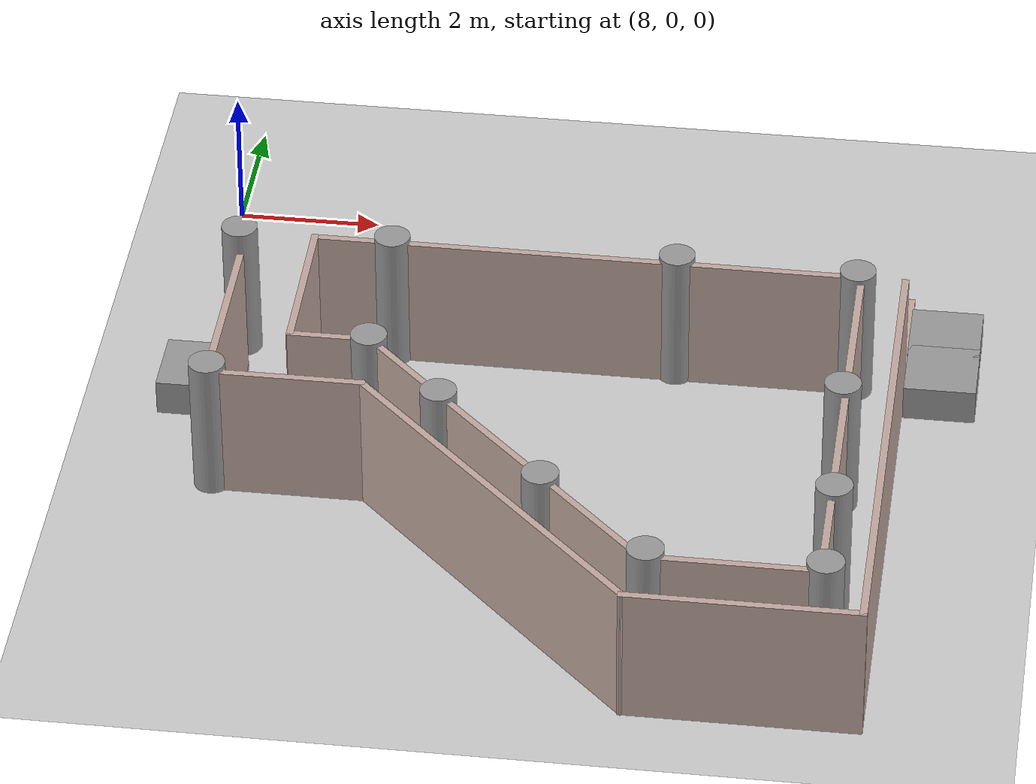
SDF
<sdf version="1.6">
 <world name="default">
  <model name="ground_plane">
   <static>1</static>
   <link name="link">
    <collision name="collision">
     <geometry><plane><normal>0 0 1</normal><size>100 100</size></plane></geometry>
     <surface>
      <contact><collide_bitmask>65535</collide_bitmask></contact>
      <friction><ode><mu>100</mu><mu2>50</mu2></ode></friction>
     </surface>
    </collision>
    <visual name="visual">
     <cast_shadows>0</cast_shadows>
     <geometry><plane><normal>0 0 1</normal><size>100 100</size></plane></geometry>
     <material>
      <script><uri>file://media/materials/scripts/gazebo.material</uri><name>Gazebo/Grey</name></script>
     </material>
    </visual>
   </link>
  </model>
  <model name="gedung_p">
   <pose>2.96636 -2.09069 0 0 -0 0</pose>
   <link name="Wall_176">
    <collision name="Wall_176_Collision">
     <geometry><box><size>2.2 0.1 0.1</size></box></geometry>
     <pose>0 0 0.05 0 -0 0</pose>
    </collision>
    <visual name="Wall_176_Visual">
     <pose>0 0 0.05 0 -0 0</pose>
     <geometry><box><size>2.2 0.1 0.1</size></box></geometry>
     <material>
      <script><uri>file://media/materials/scripts/gazebo.material</uri><name>Gazebo/Grey</name></script>
      <ambient>0.760784 0.662745 0.627451 1</ambient>
     </material>
     <meta><layer>0</layer></meta>
    </visual>
    <pose>14.8495 0.015805 0 0 -0 -1.5708</pose>
   </link>
   <link name="Wall_178">
    <collision name="Wall_178_Collision">
     <geometry><box><size>7.2 0.1 2</size></box></geometry>
     <pose>0 0 1 0 -0 0</pose>
    </collision>
    <visual name="Wall_178_Visual">
     <pose>0 0 1 0 -0 0</pose>
     <geometry><box><size>7.2 0.1 2</size></box></geometry>
     <material>
      <script><uri>file://media/materials/scripts/gazebo.material</uri><name>Gazebo/Grey</name></script>
      <ambient>0.760784 0.662745 0.627451 1</ambient>
     </material>
     <meta><layer>0</layer></meta>
    </visual>
    <pose>14.8495 -4.5842 0 0 -0 -1.5708</pose>
   </link>
   <link name="Wall_180">
    <collision name="Wall_180_Collision">
     <geometry><box><size>3.2 0.1 2</size></box></geometry>
     <pose>0 0 1 0 -0 0</pose>
    </collision>
    <visual name="Wall_180_Visual">
     <pose>0 0 1 0 -0 0</pose>
     <geometry><box><size>3.2 0.1 2</size></box></geometry>
     <material>
      <script><uri>file://media/materials/scripts/gazebo.material</uri><name>Gazebo/Grey</name></script>
      <ambient>0.760784 0.662745 0.627451 1</ambient>
     </material>
     <meta><layer>0</layer></meta>
    </visual>
    <pose>13.2995 -8.1342 0 0 -0 3.14159</pose>
   </link>
   <link name="Wall_181">
    <collision name="Wall_181_Collision">
     <geometry><box><size>5.7 0.1 2</size></box></geometry>
     <pose>0 0 1 0 -0 0</pose>
    </collision>
    <visual name="Wall_181_Visual">
     <pose>0 0 1 0 -0 0</pose>
     <geometry><box><size>5.7 0.1 2</size></box></geometry>
     <material>
      <script><uri>file://media/materials/scripts/gazebo.material</uri><name>Gazebo/Grey</name></script>
      <ambient>0.760784 0.662745 0.627451 1</ambient>
     </material>
     <meta><layer>0</layer></meta>
    </visual>
    <pose>9.76949 -6.15419 0 0 -0 2.35619</pose>
   </link>
   <link name="Wall_182">
    <collision name="Wall_182_Collision">
     <geometry><box><size>2.2 0.1 2</size></box></geometry>
     <pose>0 0 1 0 -0 0</pose>
    </collision>
    <visual name="Wall_182_Visual">
     <pose>0 0 1 0 -0 0</pose>
     <geometry><box><size>2.2 0.1 2</size></box></geometry>
     <material>
      <script><uri>file://media/materials/scripts/gazebo.material</uri><name>Gazebo/Grey</name></script>
      <ambient>0.760784 0.662745 0.627451 1</ambient>
     </material>
     <meta><layer>0</layer></meta>
    </visual>
    <pose>6.73949 -4.1742 0 0 -0 3.14159</pose>
   </link>
   <link name="Wall_189">
    <collision name="Wall_189_Collision">
     <geometry><box><size>2.7 0.1 2</size></box></geometry>
     <pose>0 0 1 0 -0 0</pose>
    </collision>
    <visual name="Wall_189_Visual">
     <pose>0 0 1 0 -0 0</pose>
     <geometry><box><size>2.7 0.1 2</size></box></geometry>
     <material>
      <script><uri>file://media/materials/scripts/gazebo.material</uri><name>Gazebo/Grey</name></script>
      <ambient>0.760784 0.662745 0.627451 1</ambient>
     </material>
     <meta><layer>0</layer></meta>
    </visual>
    <pose>5.68949 -2.87419 0 0 -0 1.5708</pose>
   </link>
   <link name="Wall_190">
    <collision name="Wall_190_Collision">
     <geometry><box><size>1.189 0.1 0.1</size></box></geometry>
     <pose>0 0 0.05 0 -0 0</pose>
    </collision>
    <visual name="Wall_190_Visual">
     <pose>0 0 0.05 0 -0 0</pose>
     <geometry><box><size>1.189 0.1 0.1</size></box></geometry>
     <material>
      <script><uri>file://media/materials/scripts/gazebo.material</uri><name>Gazebo/Grey</name></script>
      <ambient>0.760784 0.662745 0.627451 1</ambient>
     </material>
     <meta><layer>0</layer></meta>
    </visual>
    <pose>5.14499 -1.5742 0 0 -0 3.14159</pose>
   </link>
   <link name="Wall_205">
    <collision name="Wall_205_Collision">
     <geometry><box><size>7.7003 0.1 2</size></box></geometry>
     <pose>0 0 1 0 -0 0</pose>
    </collision>
    <visual name="Wall_205_Visual">
     <pose>0 0 1 0 -0 0</pose>
     <geometry><box><size>7.7003 0.1 2</size></box></geometry>
     <material>
      <script><uri>file://media/materials/scripts/gazebo.material</uri><name>Gazebo/Grey</name></script>
      <ambient>0.760784 0.662745 0.627451 1</ambient>
     </material>
     <meta><layer>0</layer></meta>
    </visual>
    <pose>10.4455 -0.995195 0 0 -0 -0.002895</pose>
   </link>
   <link name="Wall_206">
    <collision name="Wall_206_Collision">
     <geometry><box><size>6.43908 0.1 2</size></box></geometry>
     <pose>0 0 1 0 -0 0</pose>
    </collision>
    <visual name="Wall_206_Visual">
     <pose>0 0 1 0 -0 0</pose>
     <geometry><box><size>6.43908 0.1 2</size></box></geometry>
     <material>
      <script><uri>file://media/materials/scripts/gazebo.material</uri><name>Gazebo/Grey</name></script>
      <ambient>0.760784 0.662745 0.627451 1</ambient>
     </material>
     <meta><layer>0</layer></meta>
    </visual>
    <pose>14.2455 -4.1757 0 0 -0 -1.5708</pose>
   </link>
   <link name="Wall_209">
    <collision name="Wall_209_Collision">
     <geometry><box><size>2.44973 0.1 2</size></box></geometry>
     <pose>0 0 1 0 -0 0</pose>
    </collision>
    <visual name="Wall_209_Visual">
     <pose>0 0 1 0 -0 0</pose>
     <geometry><box><size>2.44973 0.1 2</size></box></geometry>
     <material>
      <script><uri>file://media/materials/scripts/gazebo.material</uri><name>Gazebo/Grey</name></script>
      <ambient>0.760784 0.662745 0.627451 1</ambient>
     </material>
     <meta><layer>0</layer></meta>
    </visual>
    <pose>13.0705 -7.3452 0 0 -0 3.14159</pose>
   </link>
   <link name="Wall_210">
    <collision name="Wall_210_Collision">
     <geometry><box><size>5.94975 0.1 2</size></box></geometry>
     <pose>0 0 1 0 -0 0</pose>
    </collision>
    <visual name="Wall_210_Visual">
     <pose>0 0 1 0 -0 0</pose>
     <geometry><box><size>5.94975 0.1 2</size></box></geometry>
     <material>
      <script><uri>file://media/materials/scripts/gazebo.material</uri><name>Gazebo/Grey</name></script>
      <ambient>0.760784 0.662745 0.627451 1</ambient>
     </material>
     <meta><layer>0</layer></meta>
    </visual>
    <pose>9.82749 -5.27719 0 0 -0 2.35619</pose>
   </link>
   <link name="Wall_211">
    <collision name="Wall_211_Collision">
     <geometry><box><size>1.2 0.1 2</size></box></geometry>
     <pose>0 0 1 0 -0 0</pose>
    </collision>
    <visual name="Wall_211_Visual">
     <pose>0 0 1 0 -0 0</pose>
     <geometry><box><size>1.2 0.1 2</size></box></geometry>
     <material>
      <script><uri>file://media/materials/scripts/gazebo.material</uri><name>Gazebo/Grey</name></script>
      <ambient>0.760784 0.662745 0.627451 1</ambient>
     </material>
     <meta><layer>0</layer></meta>
    </visual>
    <pose>7.20949 -3.20919 0 0 -0 3.14159</pose>
   </link>
   <link name="Wall_214">
    <collision name="Wall_214_Collision">
     <geometry><box><size>2.32454 0.1 2</size></box></geometry>
     <pose>0 0 1 0 -0 0</pose>
    </collision>
    <visual name="Wall_214_Visual">
     <pose>0 0 1 0 -0 0</pose>
     <geometry><box><size>2.32454 0.1 2</size></box></geometry>
     <material>
      <script><uri>file://media/materials/scripts/gazebo.material</uri><name>Gazebo/Grey</name></script>
      <ambient>0.760784 0.662745 0.627451 1</ambient>
     </material>
     <meta><layer>0</layer></meta>
    </visual>
    <pose>6.65249 -2.09669 0 0 -0 -1.5645</pose>
   </link>
   <link name="Wall_246">
    <collision name="Wall_246_Collision">
     <geometry><box><size>0.309496 0.2 2</size></box></geometry>
     <pose>0 0 1 0 -0 0</pose>
    </collision>
    <visual name="Wall_246_Visual">
     <pose>0 0 1 0 -0 0</pose>
     <geometry><box><size>0.309496 0.2 2</size></box></geometry>
     <material>
      <script><uri>file://media/materials/scripts/gazebo.material</uri><name>Gazebo/Grey</name></script>
      <ambient>0.760784 0.662745 0.627451 1</ambient>
     </material>
     <meta><layer>0</layer></meta>
    </visual>
    <pose>5.59996 -1.01699 0 0 -0 -0.049958</pose>
   </link>
   <static>1</static>
  </model>
  <model name="tiang_besar_46">
   <link name="link_0">
    <inertial>
     <mass>1</mass>
     <inertia>
      <ixx>0.166667</ixx>
      <ixy>0</ixy>
      <ixz>0</ixz>
      <iyy>0.166667</iyy>
      <iyz>0</iyz>
      <izz>0.166667</izz>
     </inertia>
    </inertial>
    <pose>0.080543 -0.031124 0 0 -0 0</pose>
    <visual name="visual">
     <geometry>
      <mesh><uri>/home/thardi/Gazebo Objek/cylinder sedang.dae</uri><scale>1 1 1.15</scale></mesh>
     </geometry>
     <material>
      <lighting>1</lighting>
      <script><uri>file://media/materials/scripts/gazebo.material</uri><name>Gazebo/Grey</name></script>
      <shader type="vertex"><normal_map>__default__</normal_map></shader>
      <ambient>0.3 0.3 0.3 1</ambient>
      <diffuse>0.7 0.7 0.7 1</diffuse>
      <specular>0.01 0.01 0.01 1</specular>
      <emissive>0 0 0 1</emissive>
     </material>
    </visual>
    <collision name="collision">
     <geometry>
      <mesh><uri>/home/thardi/Gazebo Objek/cylinder sedang.dae</uri><scale>1 1 1.15</scale></mesh>
     </geometry>
     <surface>
      <friction>
       <ode><mu>1.15</mu><mu2>1</mu2><fdir1>0 0 0</fdir1><slip1>0</slip1><slip2>0</slip2></ode>
       <torsional>
        <coefficient>1</coefficient>
        <patch_radius>0</patch_radius>
        <surface_radius>0</surface_radius>
        <use_patch_radius>1</use_patch_radius>
        <ode><slip>0</slip></ode>
       </torsional>
      </friction>
      <bounce><restitution_coefficient>0</restitution_coefficient><threshold>1e+06</threshold></bounce>
      <contact>
       <collide_without_contact>0</collide_without_contact>
       <collide_without_contact_bitmask>1</collide_without_contact_bitmask>
       <collide_bitmask>1</collide_bitmask>
       <ode>
        <soft_cfm>0</soft_cfm>
        <soft_erp>0.2</soft_erp>
        <kp>1e+13</kp>
        <kd>1</kd>
        <max_vel>0.01</max_vel>
        <min_depth>0</min_depth>
       </ode>
       <bullet>
        <split_impulse>1</split_impulse>
        <split_impulse_penetration_threshold>-0.01</split_impulse_penetration_threshold>
        <soft_cfm>0</soft_cfm>
        <soft_erp>0.2</soft_erp>
        <kp>1e+13</kp>
        <kd>1</kd>
       </bullet>
      </contact>
     </surface>
    </collision>
   </link>
   <static>1</static>
   <pose>8.4713 -3.02705 0 0 -0 0</pose>
  </model>
  <model name="tiang_besar_47">
   <link name="link_0">
    <inertial>
     <mass>1</mass>
     <inertia>
      <ixx>0.166667</ixx>
      <ixy>0</ixy>
      <ixz>0</ixz>
      <iyy>0.166667</iyy>
      <iyz>0</iyz>
      <izz>0.166667</izz>
     </inertia>
    </inertial>
    <pose>0.080543 -0.031124 0 0 -0 0</pose>
    <visual name="visual">
     <geometry>
      <mesh><uri>/home/thardi/Gazebo Objek/cylinder sedang.dae</uri><scale>1 1 1.15</scale></mesh>
     </geometry>
     <material>
      <lighting>1</lighting>
      <script><uri>file://media/materials/scripts/gazebo.material</uri><name>Gazebo/Grey</name></script>
      <shader type="vertex"><normal_map>__default__</normal_map></shader>
      <ambient>0.3 0.3 0.3 1</ambient>
      <diffuse>0.7 0.7 0.7 1</diffuse>
      <specular>0.01 0.01 0.01 1</specular>
      <emissive>0 0 0 1</emissive>
     </material>
    </visual>
    <collision name="collision">
     <geometry>
      <mesh><uri>/home/thardi/Gazebo Objek/cylinder sedang.dae</uri><scale>1 1 1.15</scale></mesh>
     </geometry>
     <surface>
      <friction>
       <ode><mu>1.15</mu><mu2>1</mu2><fdir1>0 0 0</fdir1><slip1>0</slip1><slip2>0</slip2></ode>
       <torsional>
        <coefficient>1</coefficient>
        <patch_radius>0</patch_radius>
        <surface_radius>0</surface_radius>
        <use_patch_radius>1</use_patch_radius>
        <ode><slip>0</slip></ode>
       </torsional>
      </friction>
      <bounce><restitution_coefficient>0</restitution_coefficient><threshold>1e+06</threshold></bounce>
      <contact>
       <collide_without_contact>0</collide_without_contact>
       <collide_without_contact_bitmask>1</collide_without_contact_bitmask>
       <collide_bitmask>1</collide_bitmask>
       <ode>
        <soft_cfm>0</soft_cfm>
        <soft_erp>0.2</soft_erp>
        <kp>1e+13</kp>
        <kd>1</kd>
        <max_vel>0.01</max_vel>
        <min_depth>0</min_depth>
       </ode>
       <bullet>
        <split_impulse>1</split_impulse>
        <split_impulse_penetration_threshold>-0.01</split_impulse_penetration_threshold>
        <soft_cfm>0</soft_cfm>
        <soft_erp>0.2</soft_erp>
        <kp>1e+13</kp>
        <kd>1</kd>
       </bullet>
      </contact>
     </surface>
    </collision>
   </link>
   <static>1</static>
   <pose>8.55382 -6.12721 0 0 -0 0</pose>
  </model>
  <model name="tiang_besar_48">
   <link name="link_0">
    <inertial>
     <mass>1</mass>
     <inertia>
      <ixx>0.166667</ixx>
      <ixy>0</ixy>
      <ixz>0</ixz>
      <iyy>0.166667</iyy>
      <iyz>0</iyz>
      <izz>0.166667</izz>
     </inertia>
    </inertial>
    <pose>0.080543 -0.031124 0 0 -0 0</pose>
    <visual name="visual">
     <geometry>
      <mesh><uri>/home/thardi/Gazebo Objek/cylinder sedang.dae</uri><scale>1 1 1.15</scale></mesh>
     </geometry>
     <material>
      <lighting>1</lighting>
      <script><uri>file://media/materials/scripts/gazebo.material</uri><name>Gazebo/Grey</name></script>
      <shader type="vertex"><normal_map>__default__</normal_map></shader>
      <ambient>0.3 0.3 0.3 1</ambient>
      <diffuse>0.7 0.7 0.7 1</diffuse>
      <specular>0.01 0.01 0.01 1</specular>
      <emissive>0 0 0 1</emissive>
     </material>
    </visual>
    <collision name="collision">
     <geometry>
      <mesh><uri>/home/thardi/Gazebo Objek/cylinder sedang.dae</uri><scale>1 1 1.15</scale></mesh>
     </geometry>
     <surface>
      <friction>
       <ode><mu>1.15</mu><mu2>1</mu2><fdir1>0 0 0</fdir1><slip1>0</slip1><slip2>0</slip2></ode>
       <torsional>
        <coefficient>1</coefficient>
        <patch_radius>0</patch_radius>
        <surface_radius>0</surface_radius>
        <use_patch_radius>1</use_patch_radius>
        <ode><slip>0</slip></ode>
       </torsional>
      </friction>
      <bounce><restitution_coefficient>0</restitution_coefficient><threshold>1e+06</threshold></bounce>
      <contact>
       <collide_without_contact>0</collide_without_contact>
       <collide_without_contact_bitmask>1</collide_without_contact_bitmask>
       <collide_bitmask>1</collide_bitmask>
       <ode>
        <soft_cfm>0</soft_cfm>
        <soft_erp>0.2</soft_erp>
        <kp>1e+13</kp>
        <kd>1</kd>
        <max_vel>0.01</max_vel>
        <min_depth>0</min_depth>
       </ode>
       <bullet>
        <split_impulse>1</split_impulse>
        <split_impulse_penetration_threshold>-0.01</split_impulse_penetration_threshold>
        <soft_cfm>0</soft_cfm>
        <soft_erp>0.2</soft_erp>
        <kp>1e+13</kp>
        <kd>1</kd>
       </bullet>
      </contact>
     </surface>
    </collision>
   </link>
   <static>1</static>
   <pose>10.6252 -5.25547 0 0 -0 0</pose>
  </model>
  <model name="tiang_besar_49">
   <link name="link_0">
    <inertial>
     <mass>1</mass>
     <inertia>
      <ixx>0.166667</ixx>
      <ixy>0</ixy>
      <ixz>0</ixz>
      <iyy>0.166667</iyy>
      <iyz>0</iyz>
      <izz>0.166667</izz>
     </inertia>
    </inertial>
    <pose>0.080543 -0.031124 0 0 -0 0</pose>
    <visual name="visual">
     <geometry>
      <mesh><uri>/home/thardi/Gazebo Objek/cylinder sedang.dae</uri><scale>1 1 1.15</scale></mesh>
     </geometry>
     <material>
      <lighting>1</lighting>
      <script><uri>file://media/materials/scripts/gazebo.material</uri><name>Gazebo/Grey</name></script>
      <shader type="vertex"><normal_map>__default__</normal_map></shader>
      <ambient>0.3 0.3 0.3 1</ambient>
      <diffuse>0.7 0.7 0.7 1</diffuse>
      <specular>0.01 0.01 0.01 1</specular>
      <emissive>0 0 0 1</emissive>
     </material>
    </visual>
    <collision name="collision">
     <geometry>
      <mesh><uri>/home/thardi/Gazebo Objek/cylinder sedang.dae</uri><scale>1 1 1.15</scale></mesh>
     </geometry>
     <surface>
      <friction>
       <ode><mu>1.15</mu><mu2>1</mu2><fdir1>0 0 0</fdir1><slip1>0</slip1><slip2>0</slip2></ode>
       <torsional>
        <coefficient>1</coefficient>
        <patch_radius>0</patch_radius>
        <surface_radius>0</surface_radius>
        <use_patch_radius>1</use_patch_radius>
        <ode><slip>0</slip></ode>
       </torsional>
      </friction>
      <bounce><restitution_coefficient>0</restitution_coefficient><threshold>1e+06</threshold></bounce>
      <contact>
       <collide_without_contact>0</collide_without_contact>
       <collide_without_contact_bitmask>1</collide_without_contact_bitmask>
       <collide_bitmask>1</collide_bitmask>
       <ode>
        <soft_cfm>0</soft_cfm>
        <soft_erp>0.2</soft_erp>
        <kp>1e+13</kp>
        <kd>1</kd>
        <max_vel>0.01</max_vel>
        <min_depth>0</min_depth>
       </ode>
       <bullet>
        <split_impulse>1</split_impulse>
        <split_impulse_penetration_threshold>-0.01</split_impulse_penetration_threshold>
        <soft_cfm>0</soft_cfm>
        <soft_erp>0.2</soft_erp>
        <kp>1e+13</kp>
        <kd>1</kd>
       </bullet>
      </contact>
     </surface>
    </collision>
   </link>
   <static>1</static>
   <pose>10.6094 -2.99968 0 0 -0 0</pose>
  </model>
  <model name="tiang_besar_50">
   <link name="link_0">
    <inertial>
     <mass>1</mass>
     <inertia>
      <ixx>0.166667</ixx>
      <ixy>0</ixy>
      <ixz>0</ixz>
      <iyy>0.166667</iyy>
      <iyz>0</iyz>
      <izz>0.166667</izz>
     </inertia>
    </inertial>
    <pose>0.080543 -0.031124 0 0 -0 0</pose>
    <visual name="visual">
     <geometry>
      <mesh><uri>/home/thardi/Gazebo Objek/cylinder sedang.dae</uri><scale>1 1 1.15</scale></mesh>
     </geometry>
     <material>
      <lighting>1</lighting>
      <script><uri>file://media/materials/scripts/gazebo.material</uri><name>Gazebo/Grey</name></script>
      <shader type="vertex"><normal_map>__default__</normal_map></shader>
      <ambient>0.3 0.3 0.3 1</ambient>
      <diffuse>0.7 0.7 0.7 1</diffuse>
      <specular>0.01 0.01 0.01 1</specular>
      <emissive>0 0 0 1</emissive>
     </material>
    </visual>
    <collision name="collision">
     <geometry>
      <mesh><uri>/home/thardi/Gazebo Objek/cylinder sedang.dae</uri><scale>1 1 1.15</scale></mesh>
     </geometry>
     <surface>
      <friction>
       <ode><mu>1.15</mu><mu2>1</mu2><fdir1>0 0 0</fdir1><slip1>0</slip1><slip2>0</slip2></ode>
       <torsional>
        <coefficient>1</coefficient>
        <patch_radius>0</patch_radius>
        <surface_radius>0</surface_radius>
        <use_patch_radius>1</use_patch_radius>
        <ode><slip>0</slip></ode>
       </torsional>
      </friction>
      <bounce><restitution_coefficient>0</restitution_coefficient><threshold>1e+06</threshold></bounce>
      <contact>
       <collide_without_contact>0</collide_without_contact>
       <collide_without_contact_bitmask>1</collide_without_contact_bitmask>
       <collide_bitmask>1</collide_bitmask>
       <ode>
        <soft_cfm>0</soft_cfm>
        <soft_erp>0.2</soft_erp>
        <kp>1e+13</kp>
        <kd>1</kd>
        <max_vel>0.01</max_vel>
        <min_depth>0</min_depth>
       </ode>
       <bullet>
        <split_impulse>1</split_impulse>
        <split_impulse_penetration_threshold>-0.01</split_impulse_penetration_threshold>
        <soft_cfm>0</soft_cfm>
        <soft_erp>0.2</soft_erp>
        <kp>1e+13</kp>
        <kd>1</kd>
       </bullet>
      </contact>
     </surface>
    </collision>
   </link>
   <static>1</static>
   <pose>14.8465 -9.32045 0 0 -0 0</pose>
  </model>
  <model name="tiang_besar_51">
   <link name="link_0">
    <inertial>
     <mass>1</mass>
     <inertia>
      <ixx>0.166667</ixx>
      <ixy>0</ixy>
      <ixz>0</ixz>
      <iyy>0.166667</iyy>
      <iyz>0</iyz>
      <izz>0.166667</izz>
     </inertia>
    </inertial>
    <pose>0.080543 -0.031124 0 0 -0 0</pose>
    <visual name="visual">
     <geometry>
      <mesh><uri>/home/thardi/Gazebo Objek/cylinder sedang.dae</uri><scale>1 1 1.15</scale></mesh>
     </geometry>
     <material>
      <lighting>1</lighting>
      <script><uri>file://media/materials/scripts/gazebo.material</uri><name>Gazebo/Grey</name></script>
      <shader type="vertex"><normal_map>__default__</normal_map></shader>
      <ambient>0.3 0.3 0.3 1</ambient>
      <diffuse>0.7 0.7 0.7 1</diffuse>
      <specular>0.01 0.01 0.01 1</specular>
      <emissive>0 0 0 1</emissive>
     </material>
    </visual>
    <collision name="collision">
     <geometry>
      <mesh><uri>/home/thardi/Gazebo Objek/cylinder sedang.dae</uri><scale>1 1 1.15</scale></mesh>
     </geometry>
     <surface>
      <friction>
       <ode><mu>1.15</mu><mu2>1</mu2><fdir1>0 0 0</fdir1><slip1>0</slip1><slip2>0</slip2></ode>
       <torsional>
        <coefficient>1</coefficient>
        <patch_radius>0</patch_radius>
        <surface_radius>0</surface_radius>
        <use_patch_radius>1</use_patch_radius>
        <ode><slip>0</slip></ode>
       </torsional>
      </friction>
      <bounce><restitution_coefficient>0</restitution_coefficient><threshold>1e+06</threshold></bounce>
      <contact>
       <collide_without_contact>0</collide_without_contact>
       <collide_without_contact_bitmask>1</collide_without_contact_bitmask>
       <collide_bitmask>1</collide_bitmask>
       <ode>
        <soft_cfm>0</soft_cfm>
        <soft_erp>0.2</soft_erp>
        <kp>1e+13</kp>
        <kd>1</kd>
        <max_vel>0.01</max_vel>
        <min_depth>0</min_depth>
       </ode>
       <bullet>
        <split_impulse>1</split_impulse>
        <split_impulse_penetration_threshold>-0.01</split_impulse_penetration_threshold>
        <soft_cfm>0</soft_cfm>
        <soft_erp>0.2</soft_erp>
        <kp>1e+13</kp>
        <kd>1</kd>
       </bullet>
      </contact>
     </surface>
    </collision>
   </link>
   <static>1</static>
   <pose>13.3044 -7.93936 0 0 -0 0</pose>
  </model>
  <model name="tiang_besar_52">
   <link name="link_0">
    <inertial>
     <mass>1</mass>
     <inertia>
      <ixx>0.166667</ixx>
      <ixy>0</ixy>
      <ixz>0</ixz>
      <iyy>0.166667</iyy>
      <iyz>0</iyz>
      <izz>0.166667</izz>
     </inertia>
    </inertial>
    <pose>0.080543 -0.031124 0 0 -0 0</pose>
    <visual name="visual">
     <geometry>
      <mesh><uri>/home/thardi/Gazebo Objek/cylinder sedang.dae</uri><scale>1 1 1.15</scale></mesh>
     </geometry>
     <material>
      <lighting>1</lighting>
      <script><uri>file://media/materials/scripts/gazebo.material</uri><name>Gazebo/Grey</name></script>
      <shader type="vertex"><normal_map>__default__</normal_map></shader>
      <ambient>0.3 0.3 0.3 1</ambient>
      <diffuse>0.7 0.7 0.7 1</diffuse>
      <specular>0.01 0.01 0.01 1</specular>
      <emissive>0 0 0 1</emissive>
     </material>
    </visual>
    <collision name="collision">
     <geometry>
      <mesh><uri>/home/thardi/Gazebo Objek/cylinder sedang.dae</uri><scale>1 1 1.15</scale></mesh>
     </geometry>
     <surface>
      <friction>
       <ode><mu>1.15</mu><mu2>1</mu2><fdir1>0 0 0</fdir1><slip1>0</slip1><slip2>0</slip2></ode>
       <torsional>
        <coefficient>1</coefficient>
        <patch_radius>0</patch_radius>
        <surface_radius>0</surface_radius>
        <use_patch_radius>1</use_patch_radius>
        <ode><slip>0</slip></ode>
       </torsional>
      </friction>
      <bounce><restitution_coefficient>0</restitution_coefficient><threshold>1e+06</threshold></bounce>
      <contact>
       <collide_without_contact>0</collide_without_contact>
       <collide_without_contact_bitmask>1</collide_without_contact_bitmask>
       <collide_bitmask>1</collide_bitmask>
       <ode>
        <soft_cfm>0</soft_cfm>
        <soft_erp>0.2</soft_erp>
        <kp>1e+13</kp>
        <kd>1</kd>
        <max_vel>0.01</max_vel>
        <min_depth>0</min_depth>
       </ode>
       <bullet>
        <split_impulse>1</split_impulse>
        <split_impulse_penetration_threshold>-0.01</split_impulse_penetration_threshold>
        <soft_cfm>0</soft_cfm>
        <soft_erp>0.2</soft_erp>
        <kp>1e+13</kp>
        <kd>1</kd>
       </bullet>
      </contact>
     </surface>
    </collision>
   </link>
   <static>1</static>
   <pose>11.732 -6.35699 0 0 -0 0</pose>
  </model>
  <model name="tiang_besar_53">
   <link name="link_0">
    <inertial>
     <mass>1</mass>
     <inertia>
      <ixx>0.166667</ixx>
      <ixy>0</ixy>
      <ixz>0</ixz>
      <iyy>0.166667</iyy>
      <iyz>0</iyz>
      <izz>0.166667</izz>
     </inertia>
    </inertial>
    <pose>0.080543 -0.031124 0 0 -0 0</pose>
    <visual name="visual">
     <geometry>
      <mesh><uri>/home/thardi/Gazebo Objek/cylinder sedang.dae</uri><scale>1 1 1.15</scale></mesh>
     </geometry>
     <material>
      <lighting>1</lighting>
      <script><uri>file://media/materials/scripts/gazebo.material</uri><name>Gazebo/Grey</name></script>
      <shader type="vertex"><normal_map>__default__</normal_map></shader>
      <ambient>0.3 0.3 0.3 1</ambient>
      <diffuse>0.7 0.7 0.7 1</diffuse>
      <specular>0.01 0.01 0.01 1</specular>
      <emissive>0 0 0 1</emissive>
     </material>
    </visual>
    <collision name="collision">
     <geometry>
      <mesh><uri>/home/thardi/Gazebo Objek/cylinder sedang.dae</uri><scale>1 1 1.15</scale></mesh>
     </geometry>
     <surface>
      <friction>
       <ode><mu>1.15</mu><mu2>1</mu2><fdir1>0 0 0</fdir1><slip1>0</slip1><slip2>0</slip2></ode>
       <torsional>
        <coefficient>1</coefficient>
        <patch_radius>0</patch_radius>
        <surface_radius>0</surface_radius>
        <use_patch_radius>1</use_patch_radius>
        <ode><slip>0</slip></ode>
       </torsional>
      </friction>
      <bounce><restitution_coefficient>0</restitution_coefficient><threshold>1e+06</threshold></bounce>
      <contact>
       <collide_without_contact>0</collide_without_contact>
       <collide_without_contact_bitmask>1</collide_without_contact_bitmask>
       <collide_bitmask>1</collide_bitmask>
       <ode>
        <soft_cfm>0</soft_cfm>
        <soft_erp>0.2</soft_erp>
        <kp>1e+13</kp>
        <kd>1</kd>
        <max_vel>0.01</max_vel>
        <min_depth>0</min_depth>
       </ode>
       <bullet>
        <split_impulse>1</split_impulse>
        <split_impulse_penetration_threshold>-0.01</split_impulse_penetration_threshold>
        <soft_cfm>0</soft_cfm>
        <soft_erp>0.2</soft_erp>
        <kp>1e+13</kp>
        <kd>1</kd>
       </bullet>
      </contact>
     </surface>
    </collision>
   </link>
   <static>1</static>
   <pose>17.1755 -9.30139 0 0 -0 0</pose>
  </model>
  <model name="tiang_besar_54">
   <link name="link_0">
    <inertial>
     <mass>1</mass>
     <inertia>
      <ixx>0.166667</ixx>
      <ixy>0</ixy>
      <ixz>0</ixz>
      <iyy>0.166667</iyy>
      <iyz>0</iyz>
      <izz>0.166667</izz>
     </inertia>
    </inertial>
    <pose>0.080543 -0.031124 0 0 -0 0</pose>
    <visual name="visual">
     <geometry>
      <mesh><uri>/home/thardi/Gazebo Objek/cylinder sedang.dae</uri><scale>1 1 1.15</scale></mesh>
     </geometry>
     <material>
      <lighting>1</lighting>
      <script><uri>file://media/materials/scripts/gazebo.material</uri><name>Gazebo/Grey</name></script>
      <shader type="vertex"><normal_map>__default__</normal_map></shader>
      <ambient>0.3 0.3 0.3 1</ambient>
      <diffuse>0.7 0.7 0.7 1</diffuse>
      <specular>0.01 0.01 0.01 1</specular>
      <emissive>0 0 0 1</emissive>
     </material>
    </visual>
    <collision name="collision">
     <geometry>
      <mesh><uri>/home/thardi/Gazebo Objek/cylinder sedang.dae</uri><scale>1 1 1.15</scale></mesh>
     </geometry>
     <surface>
      <friction>
       <ode><mu>1.15</mu><mu2>1</mu2><fdir1>0 0 0</fdir1><slip1>0</slip1><slip2>0</slip2></ode>
       <torsional>
        <coefficient>1</coefficient>
        <patch_radius>0</patch_radius>
        <surface_radius>0</surface_radius>
        <use_patch_radius>1</use_patch_radius>
        <ode><slip>0</slip></ode>
       </torsional>
      </friction>
      <bounce><restitution_coefficient>0</restitution_coefficient><threshold>1e+06</threshold></bounce>
      <contact>
       <collide_without_contact>0</collide_without_contact>
       <collide_without_contact_bitmask>1</collide_without_contact_bitmask>
       <collide_bitmask>1</collide_bitmask>
       <ode>
        <soft_cfm>0</soft_cfm>
        <soft_erp>0.2</soft_erp>
        <kp>1e+13</kp>
        <kd>1</kd>
        <max_vel>0.01</max_vel>
        <min_depth>0</min_depth>
       </ode>
       <bullet>
        <split_impulse>1</split_impulse>
        <split_impulse_penetration_threshold>-0.01</split_impulse_penetration_threshold>
        <soft_cfm>0</soft_cfm>
        <soft_erp>0.2</soft_erp>
        <kp>1e+13</kp>
        <kd>1</kd>
       </bullet>
      </contact>
     </surface>
    </collision>
   </link>
   <static>1</static>
   <pose>17.15 -7.72387 0 0 -0 0</pose>
  </model>
  <model name="tiang_besar_55">
   <link name="link_0">
    <inertial>
     <mass>1</mass>
     <inertia>
      <ixx>0.166667</ixx>
      <ixy>0</ixy>
      <ixz>0</ixz>
      <iyy>0.166667</iyy>
      <iyz>0</iyz>
      <izz>0.166667</izz>
     </inertia>
    </inertial>
    <pose>0.080543 -0.031124 0 0 -0 0</pose>
    <visual name="visual">
     <geometry>
      <mesh><uri>/home/thardi/Gazebo Objek/cylinder sedang.dae</uri><scale>1 1 1.15</scale></mesh>
     </geometry>
     <material>
      <lighting>1</lighting>
      <script><uri>file://media/materials/scripts/gazebo.material</uri><name>Gazebo/Grey</name></script>
      <shader type="vertex"><normal_map>__default__</normal_map></shader>
      <ambient>0.3 0.3 0.3 1</ambient>
      <diffuse>0.7 0.7 0.7 1</diffuse>
      <specular>0.01 0.01 0.01 1</specular>
      <emissive>0 0 0 1</emissive>
     </material>
    </visual>
    <collision name="collision">
     <geometry>
      <mesh><uri>/home/thardi/Gazebo Objek/cylinder sedang.dae</uri><scale>1 1 1.15</scale></mesh>
     </geometry>
     <surface>
      <friction>
       <ode><mu>1.15</mu><mu2>1</mu2><fdir1>0 0 0</fdir1><slip1>0</slip1><slip2>0</slip2></ode>
       <torsional>
        <coefficient>1</coefficient>
        <patch_radius>0</patch_radius>
        <surface_radius>0</surface_radius>
        <use_patch_radius>1</use_patch_radius>
        <ode><slip>0</slip></ode>
       </torsional>
      </friction>
      <bounce><restitution_coefficient>0</restitution_coefficient><threshold>1e+06</threshold></bounce>
      <contact>
       <collide_without_contact>0</collide_without_contact>
       <collide_without_contact_bitmask>1</collide_without_contact_bitmask>
       <collide_bitmask>1</collide_bitmask>
       <ode>
        <soft_cfm>0</soft_cfm>
        <soft_erp>0.2</soft_erp>
        <kp>1e+13</kp>
        <kd>1</kd>
        <max_vel>0.01</max_vel>
        <min_depth>0</min_depth>
       </ode>
       <bullet>
        <split_impulse>1</split_impulse>
        <split_impulse_penetration_threshold>-0.01</split_impulse_penetration_threshold>
        <soft_cfm>0</soft_cfm>
        <soft_erp>0.2</soft_erp>
        <kp>1e+13</kp>
        <kd>1</kd>
       </bullet>
      </contact>
     </surface>
    </collision>
   </link>
   <static>1</static>
   <pose>17.0824 -5.54488 0 0 -0 0</pose>
  </model>
  <model name="tiang_besar_56">
   <link name="link_0">
    <inertial>
     <mass>1</mass>
     <inertia>
      <ixx>0.166667</ixx>
      <ixy>0</ixy>
      <ixz>0</ixz>
      <iyy>0.166667</iyy>
      <iyz>0</iyz>
      <izz>0.166667</izz>
     </inertia>
    </inertial>
    <pose>0.080543 -0.031124 0 0 -0 0</pose>
    <visual name="visual">
     <geometry>
      <mesh><uri>/home/thardi/Gazebo Objek/cylinder sedang.dae</uri><scale>1 1 1.15</scale></mesh>
     </geometry>
     <material>
      <lighting>1</lighting>
      <script><uri>file://media/materials/scripts/gazebo.material</uri><name>Gazebo/Grey</name></script>
      <shader type="vertex"><normal_map>__default__</normal_map></shader>
      <ambient>0.3 0.3 0.3 1</ambient>
      <diffuse>0.7 0.7 0.7 1</diffuse>
      <specular>0.01 0.01 0.01 1</specular>
      <emissive>0 0 0 1</emissive>
     </material>
    </visual>
    <collision name="collision">
     <geometry>
      <mesh><uri>/home/thardi/Gazebo Objek/cylinder sedang.dae</uri><scale>1 1 1.15</scale></mesh>
     </geometry>
     <surface>
      <friction>
       <ode><mu>1.15</mu><mu2>1</mu2><fdir1>0 0 0</fdir1><slip1>0</slip1><slip2>0</slip2></ode>
       <torsional>
        <coefficient>1</coefficient>
        <patch_radius>0</patch_radius>
        <surface_radius>0</surface_radius>
        <use_patch_radius>1</use_patch_radius>
        <ode><slip>0</slip></ode>
       </torsional>
      </friction>
      <bounce><restitution_coefficient>0</restitution_coefficient><threshold>1e+06</threshold></bounce>
      <contact>
       <collide_without_contact>0</collide_without_contact>
       <collide_without_contact_bitmask>1</collide_without_contact_bitmask>
       <collide_bitmask>1</collide_bitmask>
       <ode>
        <soft_cfm>0</soft_cfm>
        <soft_erp>0.2</soft_erp>
        <kp>1e+13</kp>
        <kd>1</kd>
        <max_vel>0.01</max_vel>
        <min_depth>0</min_depth>
       </ode>
       <bullet>
        <split_impulse>1</split_impulse>
        <split_impulse_penetration_threshold>-0.01</split_impulse_penetration_threshold>
        <soft_cfm>0</soft_cfm>
        <soft_erp>0.2</soft_erp>
        <kp>1e+13</kp>
        <kd>1</kd>
       </bullet>
      </contact>
     </surface>
    </collision>
   </link>
   <static>1</static>
   <pose>17.0772 -3.01196 0 0 -0 0</pose>
  </model>
  <model name="tiang_besar_63">
   <link name="link_0">
    <inertial>
     <mass>1</mass>
     <inertia>
      <ixx>0.166667</ixx>
      <ixy>0</ixy>
      <ixz>0</ixz>
      <iyy>0.166667</iyy>
      <iyz>0</iyz>
      <izz>0.166667</izz>
     </inertia>
    </inertial>
    <pose>0.080543 -0.031124 0 0 -0 0</pose>
    <visual name="visual">
     <geometry>
      <mesh><uri>/home/thardi/Gazebo Objek/cylinder sedang.dae</uri><scale>1 1 1.15</scale></mesh>
     </geometry>
     <material>
      <lighting>1</lighting>
      <script><uri>file://media/materials/scripts/gazebo.material</uri><name>Gazebo/Grey</name></script>
      <shader type="vertex"><normal_map>__default__</normal_map></shader>
      <ambient>0.3 0.3 0.3 1</ambient>
      <diffuse>0.7 0.7 0.7 1</diffuse>
      <specular>0.01 0.01 0.01 1</specular>
      <emissive>0 0 0 1</emissive>
     </material>
    </visual>
    <collision name="collision">
     <geometry>
      <mesh><uri>/home/thardi/Gazebo Objek/cylinder sedang.dae</uri><scale>1 1 1.15</scale></mesh>
     </geometry>
     <surface>
      <friction>
       <ode><mu>1.15</mu><mu2>1</mu2><fdir1>0 0 0</fdir1><slip1>0</slip1><slip2>0</slip2></ode>
       <torsional>
        <coefficient>1</coefficient>
        <patch_radius>0</patch_radius>
        <surface_radius>0</surface_radius>
        <use_patch_radius>1</use_patch_radius>
        <ode><slip>0</slip></ode>
       </torsional>
      </friction>
      <bounce><restitution_coefficient>0</restitution_coefficient><threshold>1e+06</threshold></bounce>
      <contact>
       <collide_without_contact>0</collide_without_contact>
       <collide_without_contact_bitmask>1</collide_without_contact_bitmask>
       <collide_bitmask>1</collide_bitmask>
       <ode>
        <soft_cfm>0</soft_cfm>
        <soft_erp>0.2</soft_erp>
        <kp>1e+13</kp>
        <kd>1</kd>
        <max_vel>0.01</max_vel>
        <min_depth>0</min_depth>
       </ode>
       <bullet>
        <split_impulse>1</split_impulse>
        <split_impulse_penetration_threshold>-0.01</split_impulse_penetration_threshold>
        <soft_cfm>0</soft_cfm>
        <soft_erp>0.2</soft_erp>
        <kp>1e+13</kp>
        <kd>1</kd>
       </bullet>
      </contact>
     </surface>
    </collision>
   </link>
   <static>1</static>
   <pose>14.5724 -2.95056 0 0 -0 0</pose>
  </model>
  <model name="kursi_piknik_20">
   <link name="link_2">
    <inertial>
     <mass>1</mass>
     <inertia>
      <ixx>0.166667</ixx>
      <ixy>0</ixy>
      <ixz>0</ixz>
      <iyy>0.166667</iyy>
      <iyz>0</iyz>
      <izz>0.166667</izz>
     </inertia>
    </inertial>
    <visual name="visual">
     <geometry>
      <mesh><uri>/home/thardi/Gazebo Objek/kursi piknik.dae</uri><scale>0.2 0.2 0.2</scale></mesh>
     </geometry>
     <material>
      <lighting>1</lighting>
      <script><uri>file://media/materials/scripts/gazebo.material</uri><name>Gazebo/Grey</name></script>
      <shader type="vertex"><normal_map>__default__</normal_map></shader>
      <ambient>0.561 0.349 0.008 1</ambient>
      <diffuse>0.561 0.349 0.008 1</diffuse>
      <specular>0.561 0.349 0.008 1</specular>
      <emissive>0.561 0.349 0.008 1</emissive>
     </material>
    </visual>
    <collision name="collision">
     <geometry>
      <mesh><uri>/home/thardi/Gazebo Objek/kursi piknik.dae</uri><scale>0.2 0.2 0.2</scale></mesh>
     </geometry>
     <surface>
      <friction>
       <ode><mu>1</mu><mu2>1</mu2><fdir1>0 0 0</fdir1><slip1>0</slip1><slip2>0</slip2></ode>
       <torsional>
        <coefficient>1</coefficient>
        <patch_radius>0</patch_radius>
        <surface_radius>0</surface_radius>
        <use_patch_radius>1</use_patch_radius>
        <ode><slip>0</slip></ode>
       </torsional>
      </friction>
      <bounce><restitution_coefficient>0</restitution_coefficient><threshold>1e+06</threshold></bounce>
      <contact>
       <collide_without_contact>0</collide_without_contact>
       <collide_without_contact_bitmask>1</collide_without_contact_bitmask>
       <collide_bitmask>1</collide_bitmask>
       <ode>
        <soft_cfm>0</soft_cfm>
        <soft_erp>0.2</soft_erp>
        <kp>1e+13</kp>
        <kd>1</kd>
        <max_vel>0.01</max_vel>
        <min_depth>0</min_depth>
       </ode>
       <bullet>
        <split_impulse>1</split_impulse>
        <split_impulse_penetration_threshold>-0.01</split_impulse_penetration_threshold>
        <soft_cfm>0</soft_cfm>
        <soft_erp>0.2</soft_erp>
        <kp>1e+13</kp>
        <kd>1</kd>
       </bullet>
      </contact>
     </surface>
    </collision>
   </link>
   <static>1</static>
   <pose>14.0752 -2.73248 0 0 -0 0</pose>
  </model>
  <model name="kursi_piknik_21">
   <link name="link_2">
    <inertial>
     <mass>1</mass>
     <inertia>
      <ixx>0.166667</ixx>
      <ixy>0</ixy>
      <ixz>0</ixz>
      <iyy>0.166667</iyy>
      <iyz>0</iyz>
      <izz>0.166667</izz>
     </inertia>
    </inertial>
    <visual name="visual">
     <geometry>
      <mesh><uri>/home/thardi/Gazebo Objek/kursi piknik.dae</uri><scale>0.2 0.2 0.2</scale></mesh>
     </geometry>
     <material>
      <lighting>1</lighting>
      <script><uri>file://media/materials/scripts/gazebo.material</uri><name>Gazebo/Grey</name></script>
      <shader type="vertex"><normal_map>__default__</normal_map></shader>
      <ambient>0.561 0.349 0.008 1</ambient>
      <diffuse>0.561 0.349 0.008 1</diffuse>
      <specular>0.561 0.349 0.008 1</specular>
      <emissive>0.561 0.349 0.008 1</emissive>
     </material>
    </visual>
    <collision name="collision">
     <geometry>
      <mesh><uri>/home/thardi/Gazebo Objek/kursi piknik.dae</uri><scale>0.2 0.2 0.2</scale></mesh>
     </geometry>
     <surface>
      <friction>
       <ode><mu>1</mu><mu2>1</mu2><fdir1>0 0 0</fdir1><slip1>0</slip1><slip2>0</slip2></ode>
       <torsional>
        <coefficient>1</coefficient>
        <patch_radius>0</patch_radius>
        <surface_radius>0</surface_radius>
        <use_patch_radius>1</use_patch_radius>
        <ode><slip>0</slip></ode>
       </torsional>
      </friction>
      <bounce><restitution_coefficient>0</restitution_coefficient><threshold>1e+06</threshold></bounce>
      <contact>
       <collide_without_contact>0</collide_without_contact>
       <collide_without_contact_bitmask>1</collide_without_contact_bitmask>
       <collide_bitmask>1</collide_bitmask>
       <ode>
        <soft_cfm>0</soft_cfm>
        <soft_erp>0.2</soft_erp>
        <kp>1e+13</kp>
        <kd>1</kd>
        <max_vel>0.01</max_vel>
        <min_depth>0</min_depth>
       </ode>
       <bullet>
        <split_impulse>1</split_impulse>
        <split_impulse_penetration_threshold>-0.01</split_impulse_penetration_threshold>
        <soft_cfm>0</soft_cfm>
        <soft_erp>0.2</soft_erp>
        <kp>1e+13</kp>
        <kd>1</kd>
       </bullet>
      </contact>
     </surface>
    </collision>
   </link>
   <static>1</static>
   <pose>15.6961 -2.69489 0 0 -0 0</pose>
  </model>
  <model name="pot_2">
   <link name="link_12">
    <inertial>
     <mass>1</mass>
     <inertia>
      <ixx>0.166667</ixx>
      <ixy>0</ixy>
      <ixz>0</ixz>
      <iyy>0.166667</iyy>
      <iyz>0</iyz>
      <izz>0.166667</izz>
     </inertia>
    </inertial>
    <visual name="visual">
     <geometry><mesh><uri>/home/thardi/Gazebo Objek/pot.dae</uri><scale>0.2 0.2 0.2</scale></mesh></geometry>
     <material>
      <lighting>1</lighting>
      <script><uri>file://media/materials/scripts/gazebo.material</uri><name>Gazebo/Grey</name></script>
      <shader type="vertex"><normal_map>__default__</normal_map></shader>
      <ambient>0.3 0.3 0.3 1</ambient>
      <diffuse>0.7 0.7 0.7 1</diffuse>
      <specular>0.01 0.01 0.01 1</specular>
      <emissive>0 0 0 1</emissive>
     </material>
    </visual>
    <collision name="collision">
     <geometry><mesh><uri>/home/thardi/Gazebo Objek/pot.dae</uri><scale>0.2 0.2 0.2</scale></mesh></geometry>
     <surface>
      <friction>
       <ode><mu>1</mu><mu2>1</mu2><fdir1>0 0 0</fdir1><slip1>0</slip1><slip2>0</slip2></ode>
       <torsional>
        <coefficient>1</coefficient>
        <patch_radius>0</patch_radius>
        <surface_radius>0</surface_radius>
        <use_patch_radius>1</use_patch_radius>
        <ode><slip>0</slip></ode>
       </torsional>
      </friction>
      <bounce><restitution_coefficient>0</restitution_coefficient><threshold>1e+06</threshold></bounce>
      <contact>
       <collide_without_contact>0</collide_without_contact>
       <collide_without_contact_bitmask>1</collide_without_contact_bitmask>
       <collide_bitmask>1</collide_bitmask>
       <ode>
        <soft_cfm>0</soft_cfm>
        <soft_erp>0.2</soft_erp>
        <kp>1e+13</kp>
        <kd>1</kd>
        <max_vel>0.01</max_vel>
        <min_depth>0</min_depth>
       </ode>
       <bullet>
        <split_impulse>1</split_impulse>
        <split_impulse_penetration_threshold>-0.01</split_impulse_penetration_threshold>
        <soft_cfm>0</soft_cfm>
        <soft_erp>0.2</soft_erp>
        <kp>1e+13</kp>
        <kd>1</kd>
       </bullet>
      </contact>
     </surface>
    </collision>
   </link>
   <static>1</static>
   <pose>10.2537 -2.68611 0 0 -0 0</pose>
  </model>
  <model name="blok_4">
   <link name="link_0">
    <inertial>
     <mass>1</mass>
     <inertia>
      <ixx>0.166667</ixx>
      <ixy>0</ixy>
      <ixz>0</ixz>
      <iyy>0.166667</iyy>
      <iyz>0</iyz>
      <izz>0.166667</izz>
     </inertia>
    </inertial>
    <visual name="visual">
     <geometry><box><size>1 1 1</size></box></geometry>
     <material>
      <lighting>1</lighting>
      <script><uri>file://media/materials/scripts/gazebo.material</uri><name>Gazebo/Grey</name></script>
      <shader type="vertex"><normal_map>__default__</normal_map></shader>
      <ambient>0.3 0.3 0.3 1</ambient>
      <diffuse>0.7 0.7 0.7 1</diffuse>
      <specular>0.01 0.01 0.01 1</specular>
      <emissive>0 0 0 1</emissive>
     </material>
    </visual>
    <collision name="collision">
     <geometry><box><size>1 1 1</size></box></geometry>
     <surface>
      <friction>
       <ode><mu>1</mu><mu2>1</mu2><fdir1>0 0 0</fdir1><slip1>0</slip1><slip2>0</slip2></ode>
       <torsional>
        <coefficient>1</coefficient>
        <patch_radius>0</patch_radius>
        <surface_radius>0</surface_radius>
        <use_patch_radius>1</use_patch_radius>
        <ode><slip>0</slip></ode>
       </torsional>
      </friction>
      <bounce><restitution_coefficient>0</restitution_coefficient><threshold>1e+06</threshold></bounce>
      <contact>
       <collide_without_contact>0</collide_without_contact>
       <collide_without_contact_bitmask>1</collide_without_contact_bitmask>
       <collide_bitmask>1</collide_bitmask>
       <ode>
        <soft_cfm>0</soft_cfm>
        <soft_erp>0.2</soft_erp>
        <kp>1e+13</kp>
        <kd>1</kd>
        <max_vel>0.01</max_vel>
        <min_depth>0</min_depth>
       </ode>
       <bullet>
        <split_impulse>1</split_impulse>
        <split_impulse_penetration_threshold>-0.01</split_impulse_penetration_threshold>
        <soft_cfm>0</soft_cfm>
        <soft_erp>0.2</soft_erp>
        <kp>1e+13</kp>
        <kd>1</kd>
       </bullet>
      </contact>
     </surface>
    </collision>
   </link>
   <static>1</static>
   <pose>8.10115 -4.21014 0 0 -0 0</pose>
  </model>
  <model name="blok_10">
   <link name="link_0">
    <inertial>
     <mass>1</mass>
     <inertia>
      <ixx>0.166667</ixx>
      <ixy>0</ixy>
      <ixz>0</ixz>
      <iyy>0.166667</iyy>
      <iyz>0</iyz>
      <izz>0.166667</izz>
     </inertia>
    </inertial>
    <visual name="visual">
     <geometry><box><size>1 1 1</size></box></geometry>
     <material>
      <lighting>1</lighting>
      <script><uri>file://media/materials/scripts/gazebo.material</uri><name>Gazebo/Grey</name></script>
      <shader type="vertex"><normal_map>__default__</normal_map></shader>
      <ambient>0.3 0.3 0.3 1</ambient>
      <diffuse>0.7 0.7 0.7 1</diffuse>
      <specular>0.01 0.01 0.01 1</specular>
      <emissive>0 0 0 1</emissive>
     </material>
    </visual>
    <collision name="collision">
     <geometry><box><size>1 1 1</size></box></geometry>
     <surface>
      <friction>
       <ode><mu>1</mu><mu2>1</mu2><fdir1>0 0 0</fdir1><slip1>0</slip1><slip2>0</slip2></ode>
       <torsional>
        <coefficient>1</coefficient>
        <patch_radius>0</patch_radius>
        <surface_radius>0</surface_radius>
        <use_patch_radius>1</use_patch_radius>
        <ode><slip>0</slip></ode>
       </torsional>
      </friction>
      <bounce><restitution_coefficient>0</restitution_coefficient><threshold>1e+06</threshold></bounce>
      <contact>
       <collide_without_contact>0</collide_without_contact>
       <collide_without_contact_bitmask>1</collide_without_contact_bitmask>
       <collide_bitmask>1</collide_bitmask>
       <ode>
        <soft_cfm>0</soft_cfm>
        <soft_erp>0.2</soft_erp>
        <kp>1e+13</kp>
        <kd>1</kd>
        <max_vel>0.01</max_vel>
        <min_depth>0</min_depth>
       </ode>
       <bullet>
        <split_impulse>1</split_impulse>
        <split_impulse_penetration_threshold>-0.01</split_impulse_penetration_threshold>
        <soft_cfm>0</soft_cfm>
        <soft_erp>0.2</soft_erp>
        <kp>1e+13</kp>
        <kd>1</kd>
       </bullet>
      </contact>
     </surface>
    </collision>
   </link>
   <static>1</static>
   <pose>18.3707 -2.24396 0 0 -0 0</pose>
  </model>
  <model name="blok_11">
   <link name="link_0">
    <inertial>
     <mass>1</mass>
     <inertia>
      <ixx>0.166667</ixx>
      <ixy>0</ixy>
      <ixz>0</ixz>
      <iyy>0.166667</iyy>
      <iyz>0</iyz>
      <izz>0.166667</izz>
     </inertia>
    </inertial>
    <visual name="visual">
     <geometry><box><size>1 1 1</size></box></geometry>
     <material>
      <lighting>1</lighting>
      <script><uri>file://media/materials/scripts/gazebo.material</uri><name>Gazebo/Grey</name></script>
      <shader type="vertex"><normal_map>__default__</normal_map></shader>
      <ambient>0.3 0.3 0.3 1</ambient>
      <diffuse>0.7 0.7 0.7 1</diffuse>
      <specular>0.01 0.01 0.01 1</specular>
      <emissive>0 0 0 1</emissive>
     </material>
    </visual>
    <collision name="collision">
     <geometry><box><size>1 1 1</size></box></geometry>
     <surface>
      <friction>
       <ode><mu>1</mu><mu2>1</mu2><fdir1>0 0 0</fdir1><slip1>0</slip1><slip2>0</slip2></ode>
       <torsional>
        <coefficient>1</coefficient>
        <patch_radius>0</patch_radius>
        <surface_radius>0</surface_radius>
        <use_patch_radius>1</use_patch_radius>
        <ode><slip>0</slip></ode>
       </torsional>
      </friction>
      <bounce><restitution_coefficient>0</restitution_coefficient><threshold>1e+06</threshold></bounce>
      <contact>
       <collide_without_contact>0</collide_without_contact>
       <collide_without_contact_bitmask>1</collide_without_contact_bitmask>
       <collide_bitmask>1</collide_bitmask>
       <ode>
        <soft_cfm>0</soft_cfm>
        <soft_erp>0.2</soft_erp>
        <kp>1e+13</kp>
        <kd>1</kd>
        <max_vel>0.01</max_vel>
        <min_depth>0</min_depth>
       </ode>
       <bullet>
        <split_impulse>1</split_impulse>
        <split_impulse_penetration_threshold>-0.01</split_impulse_penetration_threshold>
        <soft_cfm>0</soft_cfm>
        <soft_erp>0.2</soft_erp>
        <kp>1e+13</kp>
        <kd>1</kd>
       </bullet>
      </contact>
     </surface>
    </collision>
   </link>
   <static>1</static>
   <pose>18.3765 -3.07049 0 0 -0 0</pose>
  </model>
 </world>
</sdf>
